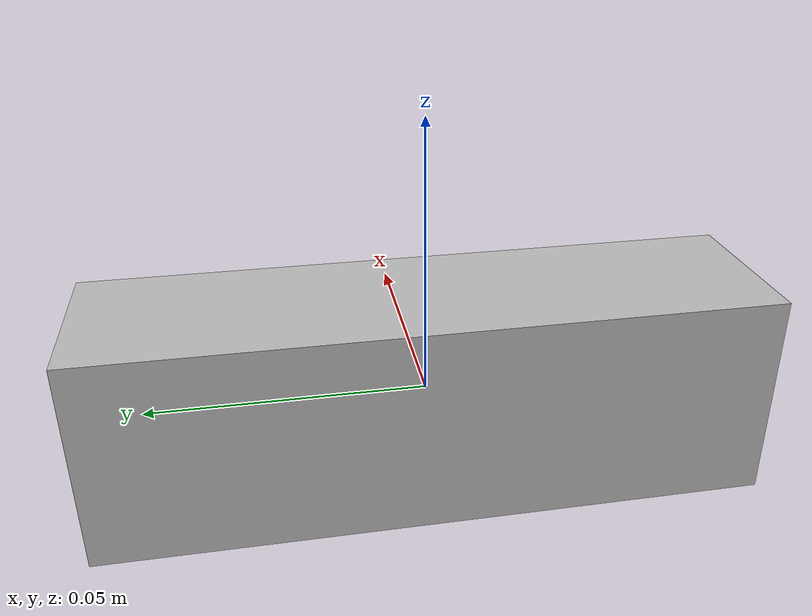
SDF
<?xml version="1.0" ?>
<sdf version="1.6">
  <model name="BARRASIM">
    <static>false</static>
    <link name="link">
      <pose>0 0 0 0 0 0</pose>
      <inertial>
        <pose>0e-02 -0.013e-02 0.028e-02</pose>
        <mass>50.29e-6</mass>
        <inertia>
          <ixx>304.1e-10</ixx>
          <ixy>0.0001e-10</ixy>
          <ixz>0.0004e-10</ixz>
          <iyy>45.92e-10</iyy>
          <iyz>-0.267e-10</iyz>
          <izz>303.17e-10</izz>
        </inertia>
      </inertial>
      <collision name="collision">
        <geometry>
          <box>
            <size>0.031 0.12 0.038</size>
          </box>
        </geometry>
      </collision>
      <visual name="visual">
        <geometry>
          <box>
            <size>0.031 0.12 0.038</size>
          </box>
        </geometry>
        <material>
          <script>
            <uri>model://BARRASIM/materials/scripts</uri>
            <uri>model://BARRASIM/materials/textures</uri>
            <name>BARRASIM</name>
          </script>
        </material>
      </visual>
    </link>
  </model>
</sdf>
